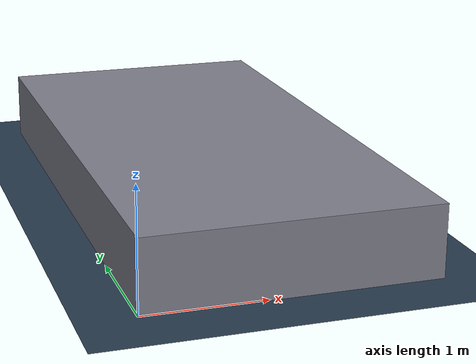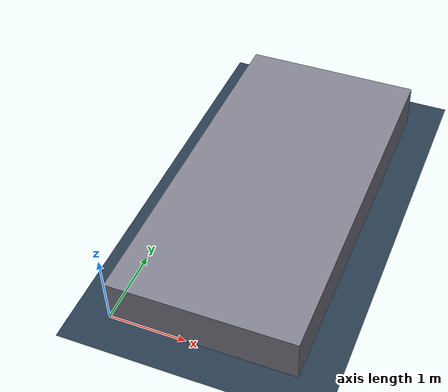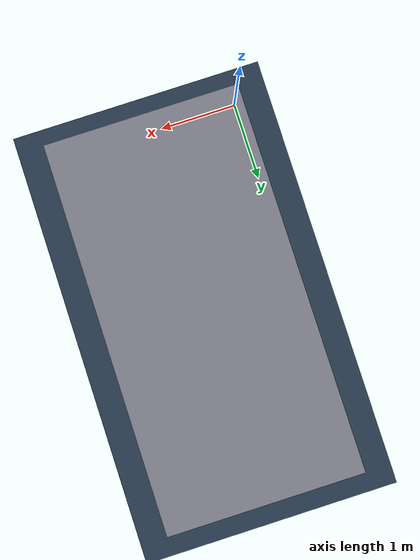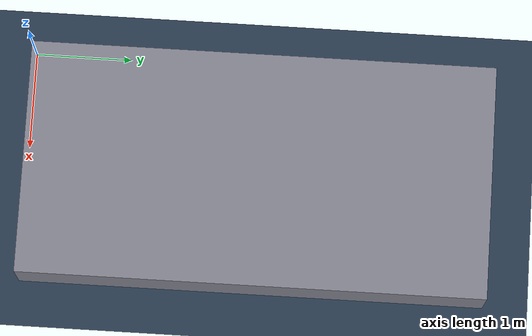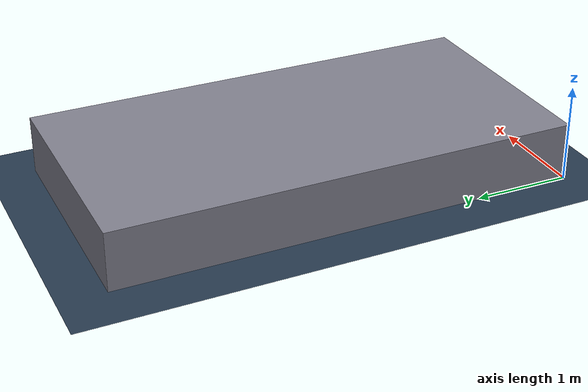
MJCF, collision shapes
<mujoco model="aesir_steps">

  <default>
    <geom condim="4" friction="0.2 0.005 0.0001"/>
  </default>

  <asset>
    <texture name="texplane" type="2d" builtin="checker" rgb1=".2 .3 .4" rgb2=".1 0.15 0.2" width="512" height="512"/>
    <material name="matplane" reflectance="0.3" texture="texplane" texrepeat="4 4" texuniform="true"/>
    <material name="steps_visual" rgba="0.5 0.5 0.55 1"/>
    <material name="obs_hub" rgba="0.8 0.3 0.15 1"/>
    <material name="obs_door" rgba="0.2 0.6 0.85 1"/>

    <mesh name="base_link_mesh" file="meshes/steps/base_link.stl" scale="0.001 0.001 0.001"/>
    <mesh name="hub_1" file="meshes/steps/Component3_1.stl" scale="0.001 0.001 0.001"/>
    <mesh name="hub_2" file="meshes/steps/Component3_2.stl" scale="0.001 0.001 0.001"/>
    <mesh name="hub_3" file="meshes/steps/Component3_3.stl" scale="0.001 0.001 0.001"/>
    <mesh name="hub_4" file="meshes/steps/Component3_4.stl" scale="0.001 0.001 0.001"/>
    <mesh name="hub_5" file="meshes/steps/Component3_5.stl" scale="0.001 0.001 0.001"/>
    <mesh name="door_1" file="meshes/steps/Component4_1.stl" scale="0.001 0.001 0.001"/>
    <mesh name="door_2" file="meshes/steps/Component4_2.stl" scale="0.001 0.001 0.001"/>
    <mesh name="door_3" file="meshes/steps/Component4_3.stl" scale="0.001 0.001 0.001"/>
    <mesh name="door_4" file="meshes/steps/Component4_4.stl" scale="0.001 0.001 0.001"/>
    <mesh name="door_5" file="meshes/steps/Component4_5.stl" scale="0.001 0.001 0.001"/>
  </asset>

  <worldbody>
    <light directional="true" pos="3 5 8" dir="-0.5 -0.5 -1"/>
    <light directional="true" pos="-1 2 6" dir="0.5 -0.3 -1"/>

    <geom name="steps_floor" type="plane" size="50 50 0.1" pos="0 0 0" material="matplane"/>

    <!-- STEPS PLATFORM: visual + collider -->
    <body name="steps_base">
      <geom name="steps_visual" type="mesh" mesh="base_link_mesh"
            contype="0" conaffinity="0" material="steps_visual"/>
      <geom name="steps_collision" type="box" size="1.209 2.403 0.3045"
            pos="1.209 2.403 0.2955" rgba="0.5 0.5 0.55 0.3"/>
    </body>

    <!-- ===== HUBS (Component3) ===== -->
    <!-- Hub 1: center (1.221, 2.2874, 0.3746) -->
    <body name="hub_1">
      <geom name="hub_1_vis" type="mesh" mesh="hub_1"
            contype="0" conaffinity="0" material="obs_hub"/>
      <geom name="hub_1_col" type="box" size="0.0452 0.0475 0.0475"
            pos="1.221 2.2874 0.3746" rgba="0.8 0.3 0.15 0.4"/>
    </body>

    <!-- Hub 2: center (1.3366, 2.403, 0.3746) -->
    <body name="hub_2">
      <geom name="hub_2_vis" type="mesh" mesh="hub_2"
            contype="0" conaffinity="0" material="obs_hub"/>
      <geom name="hub_2_col" type="box" size="0.0475 0.0452 0.0475"
            pos="1.3366 2.403 0.3746" rgba="0.8 0.3 0.15 0.4"/>
    </body>

    <!-- Hub 3: center (1.221, 2.5186, 0.3746) -->
    <body name="hub_3">
      <geom name="hub_3_vis" type="mesh" mesh="hub_3"
            contype="0" conaffinity="0" material="obs_hub"/>
      <geom name="hub_3_col" type="box" size="0.0452 0.0475 0.0475"
            pos="1.221 2.5186 0.3746" rgba="0.8 0.3 0.15 0.4"/>
    </body>

    <!-- Hub 4: center (1.1054, 2.403, 0.3746) -->
    <body name="hub_4">
      <geom name="hub_4_vis" type="mesh" mesh="hub_4"
            contype="0" conaffinity="0" material="obs_hub"/>
      <geom name="hub_4_col" type="box" size="0.0475 0.0452 0.0475"
            pos="1.1054 2.403 0.3746" rgba="0.8 0.3 0.15 0.4"/>
    </body>

    <!-- Hub 5: center (1.221, 2.403, 0.431) -->
    <body name="hub_5">
      <geom name="hub_5_vis" type="mesh" mesh="hub_5"
            contype="0" conaffinity="0" material="obs_hub"/>
      <geom name="hub_5_col" type="box" size="0.0451 0.0451 0.022"
            pos="1.221 2.403 0.431" rgba="0.8 0.3 0.15 0.4"/>
    </body>

    <!-- ===== DOORS/OBSTACLES (Component4) ===== -->
    <!-- Door 1: center (1.221, 2.2673, 0.3946) -->
    <body name="door_1">
      <geom name="door_1_vis" type="mesh" mesh="door_1"
            contype="0" conaffinity="0" material="obs_door"/>
      <geom name="door_1_col" type="box" size="0.02 0.0335 0.0335"
            pos="1.221 2.2673 0.3946" rgba="0.2 0.6 0.85 0.4"/>
    </body>

    <!-- Door 2: center (1.3489, 2.403, 0.3869) -->
    <body name="door_2">
      <geom name="door_2_vis" type="mesh" mesh="door_2"
            contype="0" conaffinity="0" material="obs_door"/>
      <geom name="door_2_col" type="box" size="0.0335 0.02 0.0335"
            pos="1.3489 2.403 0.3869" rgba="0.2 0.6 0.85 0.4"/>
    </body>

    <!-- Door 3: center (1.221, 2.5309, 0.3869) -->
    <body name="door_3">
      <geom name="door_3_vis" type="mesh" mesh="door_3"
            contype="0" conaffinity="0" material="obs_door"/>
      <geom name="door_3_col" type="box" size="0.02 0.0335 0.0335"
            pos="1.221 2.5309 0.3869" rgba="0.2 0.6 0.85 0.4"/>
    </body>

    <!-- Door 4: center (1.0931, 2.403, 0.3869) -->
    <body name="door_4">
      <geom name="door_4_vis" type="mesh" mesh="door_4"
            contype="0" conaffinity="0" material="obs_door"/>
      <geom name="door_4_col" type="box" size="0.0335 0.02 0.0335"
            pos="1.0931 2.403 0.3869" rgba="0.2 0.6 0.85 0.4"/>
    </body>

    <!-- Door 5: center (1.221, 2.403, 0.4575) -->
    <body name="door_5">
      <geom name="door_5_vis" type="mesh" mesh="door_5"
            contype="0" conaffinity="0" material="obs_door"/>
      <geom name="door_5_col" type="box" size="0.02 0.02 0.0305"
            pos="1.221 2.403 0.4575" rgba="0.2 0.6 0.85 0.4"/>
    </body>

  </worldbody>

</mujoco>
